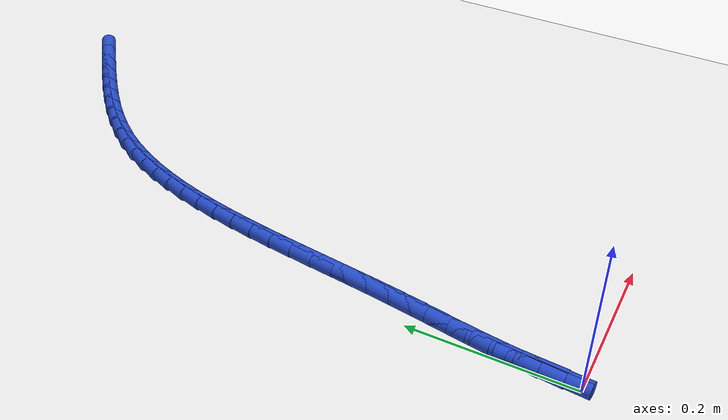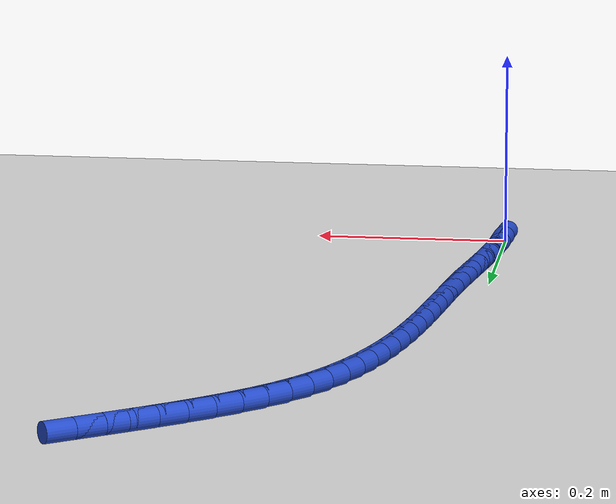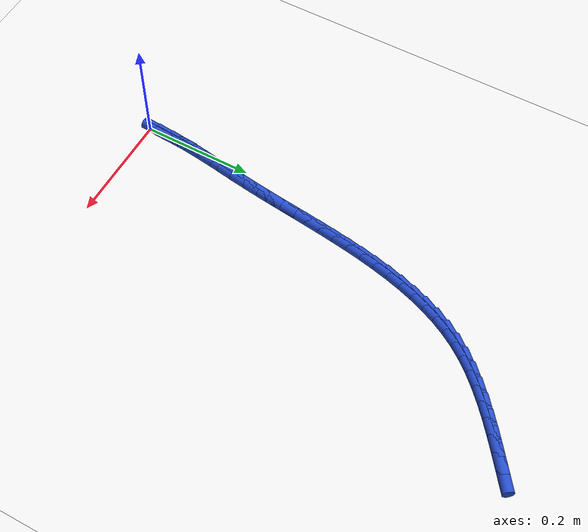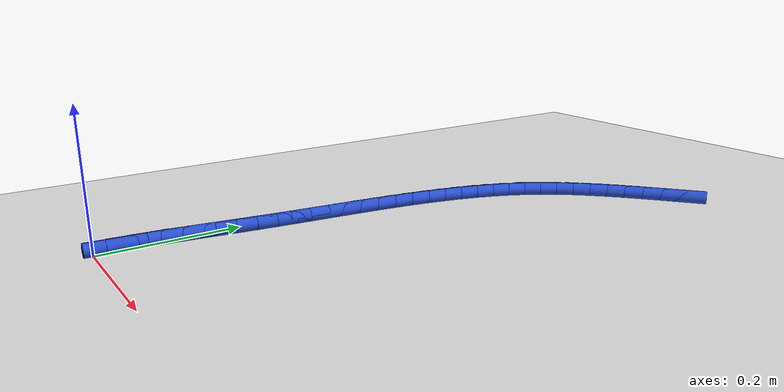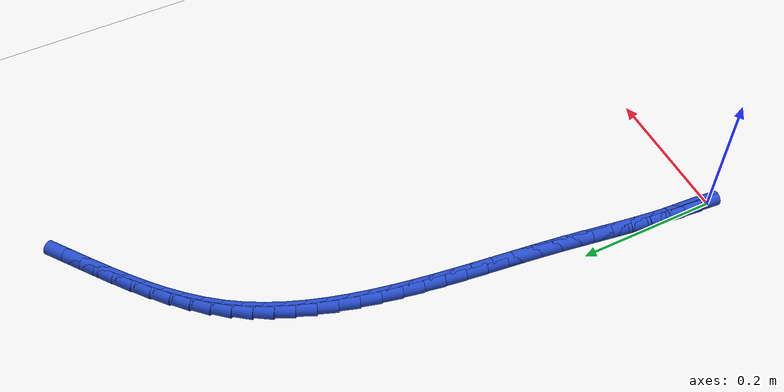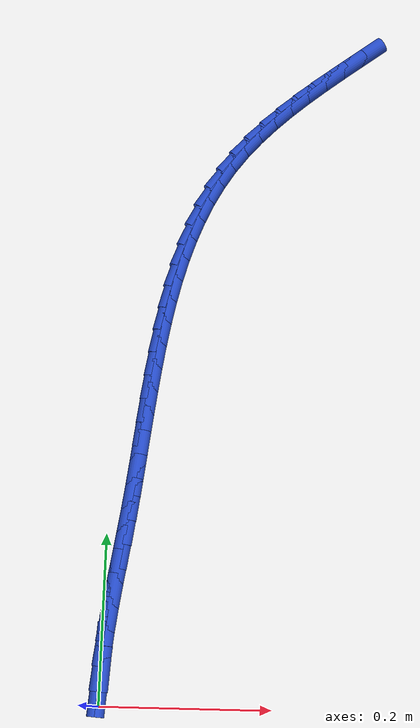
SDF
<sdf version="1.6">
 <world name="default">
  <model name="ground_plane">
   <static>1</static>
   <link name="link">
    <collision name="collision">
     <geometry><plane><normal>0 0 1</normal><size>100 100</size></plane></geometry>
     <surface><friction><ode><mu>100</mu><mu2>50</mu2></ode></friction></surface>
    </collision>
    <visual name="visual">
     <cast_shadows>0</cast_shadows>
     <geometry><plane><normal>0 0 1</normal><size>100 100</size></plane></geometry>
     <material>
      <script><uri>file://media/materials/scripts/gazebo.material</uri><name>Gazebo/WhiteGlow</name></script>
     </material>
    </visual>
   </link>
  </model>
  <model name="line">
   <link name="link_1">
    <pose>0.0008459314227873267 0.02835528563312401 0.01 0 1.57 1.5014154609786812</pose>
    <collision name="collision">
     <geometry><cylinder><radius>0.01</radius><length>0.08</length></cylinder></geometry>
    </collision>
    <visual name="visual">
     <material>
      <script><name>Gazebo/Blue</name><uri>file://media/materials/scripts/gazebo.material</uri></script>
     </material>
     <geometry><cylinder><radius>0.01</radius><length>0.08</length></cylinder></geometry>
    </visual>
   </link>
   <link name="link_2">
    <pose>0.0028027597509173562 0.05651416535578049 0.01 0 1.57 1.4691418552698836</pose>
    <collision name="collision">
     <geometry><cylinder><radius>0.01</radius><length>0.08</length></cylinder></geometry>
    </collision>
    <visual name="visual">
     <material>
      <script><name>Gazebo/Blue</name><uri>file://media/materials/scripts/gazebo.material</uri></script>
     </material>
     <geometry><cylinder><radius>0.01</radius><length>0.08</length></cylinder></geometry>
    </visual>
   </link>
   <link name="link_3">
    <pose>0.0056630419423527945 0.08455447668830844 0.01 0 1.57 1.4444604171441804</pose>
    <collision name="collision">
     <geometry><cylinder><radius>0.01</radius><length>0.08</length></cylinder></geometry>
    </collision>
    <visual name="visual">
     <material>
      <script><name>Gazebo/Blue</name><uri>file://media/materials/scripts/gazebo.material</uri></script>
     </material>
     <geometry><cylinder><radius>0.01</radius><length>0.08</length></cylinder></geometry>
    </visual>
   </link>
   <link name="link_4">
    <pose>0.009219334955056339 0.11255405715104687 0.01 0 1.57 1.4275146693953007</pose>
    <collision name="collision">
     <geometry><cylinder><radius>0.01</radius><length>0.08</length></cylinder></geometry>
    </collision>
    <visual name="visual">
     <material>
      <script><name>Gazebo/Blue</name><uri>file://media/materials/scripts/gazebo.material</uri></script>
     </material>
     <geometry><cylinder><radius>0.01</radius><length>0.08</length></cylinder></geometry>
    </visual>
   </link>
   <link name="link_5">
    <pose>0.01326419574699068 0.14059074426433482 0.01 0 1.57 1.4183217091300717</pose>
    <collision name="collision">
     <geometry><cylinder><radius>0.01</radius><length>0.08</length></cylinder></geometry>
    </collision>
    <visual name="visual">
     <material>
      <script><name>Gazebo/Blue</name><uri>file://media/materials/scripts/gazebo.material</uri></script>
     </material>
     <geometry><cylinder><radius>0.01</radius><length>0.08</length></cylinder></geometry>
    </visual>
   </link>
   <link name="link_6">
    <pose>0.01759018127611853 0.16874237554851132 0.01 0 1.57 1.4168035609285206</pose>
    <collision name="collision">
     <geometry><cylinder><radius>0.01</radius><length>0.08</length></cylinder></geometry>
    </collision>
    <visual name="visual">
     <material>
      <script><name>Gazebo/Blue</name><uri>file://media/materials/scripts/gazebo.material</uri></script>
     </material>
     <geometry><cylinder><radius>0.01</radius><length>0.08</length></cylinder></geometry>
    </visual>
   </link>
   <link name="link_7">
    <pose>0.021989848500402573 0.19708678852391542 0.01 0 1.57 1.422807046329848</pose>
    <collision name="collision">
     <geometry><cylinder><radius>0.01</radius><length>0.08</length></cylinder></geometry>
    </collision>
    <visual name="visual">
     <material>
      <script><name>Gazebo/Blue</name><uri>file://media/materials/scripts/gazebo.material</uri></script>
     </material>
     <geometry><cylinder><radius>0.01</radius><length>0.08</length></cylinder></geometry>
    </visual>
   </link>
   <link name="link_8">
    <pose>0.02625575437780551 0.22570182071088613 0.01 0 1.57 1.4349243816880823</pose>
    <collision name="collision">
     <geometry><cylinder><radius>0.01</radius><length>0.08</length></cylinder></geometry>
    </collision>
    <visual name="visual">
     <material>
      <script><name>Gazebo/Blue</name><uri>file://media/materials/scripts/gazebo.material</uri></script>
     </material>
     <geometry><cylinder><radius>0.01</radius><length>0.08</length></cylinder></geometry>
    </visual>
   </link>
   <link name="link_9">
    <pose>0.030213189890216003 0.2546485801065612 0.01 0 1.57 1.4450535467283119</pose>
    <collision name="collision">
     <geometry><cylinder><radius>0.01</radius><length>0.08</length></cylinder></geometry>
    </collision>
    <visual name="visual">
     <material>
      <script><name>Gazebo/Blue</name><uri>file://media/materials/scripts/gazebo.material</uri></script>
     </material>
     <geometry><cylinder><radius>0.01</radius><length>0.08</length></cylinder></geometry>
    </visual>
   </link>
   <link name="link_10">
    <pose>0.0339077659649885 0.28387557481361697 0.01 0 1.57 1.4500570326473867</pose>
    <collision name="collision">
     <geometry><cylinder><radius>0.01</radius><length>0.08</length></cylinder></geometry>
    </collision>
    <visual name="visual">
     <material>
      <script><name>Gazebo/Blue</name><uri>file://media/materials/scripts/gazebo.material</uri></script>
     </material>
     <geometry><cylinder><radius>0.01</radius><length>0.08</length></cylinder></geometry>
    </visual>
   </link>
   <link name="link_11">
    <pose>0.03747597874428108 0.31328486382376375 0.01 0 1.57 1.4500503241573974</pose>
    <collision name="collision">
     <geometry><cylinder><radius>0.01</radius><length>0.08</length></cylinder></geometry>
    </collision>
    <visual name="visual">
     <material>
      <script><name>Gazebo/Blue</name><uri>file://media/materials/scripts/gazebo.material</uri></script>
     </material>
     <geometry><cylinder><radius>0.01</radius><length>0.08</length></cylinder></geometry>
    </visual>
   </link>
   <link name="link_12">
    <pose>0.04105460917173479 0.34277836057395095 0.01 0 1.57 1.4450762870016227</pose>
    <collision name="collision">
     <geometry><cylinder><radius>0.01</radius><length>0.08</length></cylinder></geometry>
    </collision>
    <visual name="visual">
     <material>
      <script><name>Gazebo/Blue</name><uri>file://media/materials/scripts/gazebo.material</uri></script>
     </material>
     <geometry><cylinder><radius>0.01</radius><length>0.08</length></cylinder></geometry>
    </visual>
   </link>
   <link name="link_13">
    <pose>0.044780438190990667 0.3722579785011281 0.01 0 1.57 1.4350971684538663</pose>
    <collision name="collision">
     <geometry><cylinder><radius>0.01</radius><length>0.08</length></cylinder></geometry>
    </collision>
    <visual name="visual">
     <material>
      <script><name>Gazebo/Blue</name><uri>file://media/materials/scripts/gazebo.material</uri></script>
     </material>
     <geometry><cylinder><radius>0.01</radius><length>0.08</length></cylinder></geometry>
    </visual>
   </link>
   <link name="link_14">
    <pose>0.048790246745689735 0.40162563104224486 0.01 0 1.57 1.419997435423446</pose>
    <collision name="collision">
     <geometry><cylinder><radius>0.01</radius><length>0.08</length></cylinder></geometry>
    </collision>
    <visual name="visual">
     <material>
      <script><name>Gazebo/Blue</name><uri>file://media/materials/scripts/gazebo.material</uri></script>
     </material>
     <geometry><cylinder><radius>0.01</radius><length>0.08</length></cylinder></geometry>
    </visual>
   </link>
   <link name="link_15">
    <pose>0.05322081577947305 0.43078323163425064 0.01 0 1.57 1.399587688361434</pose>
    <collision name="collision">
     <geometry><cylinder><radius>0.01</radius><length>0.08</length></cylinder></geometry>
    </collision>
    <visual name="visual">
     <material>
      <script><name>Gazebo/Blue</name><uri>file://media/materials/scripts/gazebo.material</uri></script>
     </material>
     <geometry><cylinder><radius>0.01</radius><length>0.08</length></cylinder></geometry>
    </visual>
   </link>
   <link name="link_16">
    <pose>0.05820892623598163 0.4596326937140951 0.01 0 1.57 1.3736108628218646</pose>
    <collision name="collision">
     <geometry><cylinder><radius>0.01</radius><length>0.08</length></cylinder></geometry>
    </collision>
    <visual name="visual">
     <material>
      <script><name>Gazebo/Blue</name><uri>file://media/materials/scripts/gazebo.material</uri></script>
     </material>
     <geometry><cylinder><radius>0.01</radius><length>0.08</length></cylinder></geometry>
    </visual>
   </link>
   <link name="link_17">
    <pose>0.06389135905885654 0.4880759307187279 0.01 0 1.57 1.3417526721261681</pose>
    <collision name="collision">
     <geometry><cylinder><radius>0.01</radius><length>0.08</length></cylinder></geometry>
    </collision>
    <visual name="visual">
     <material>
      <script><name>Gazebo/Blue</name><uri>file://media/materials/scripts/gazebo.material</uri></script>
     </material>
     <geometry><cylinder><radius>0.01</radius><length>0.08</length></cylinder></geometry>
    </visual>
   </link>
   <link name="link_18">
    <pose>0.07040489519173876 0.5160148560850982 0.01 0 1.57 1.3036590968623252</pose>
    <collision name="collision">
     <geometry><cylinder><radius>0.01</radius><length>0.08</length></cylinder></geometry>
    </collision>
    <visual name="visual">
     <material>
      <script><name>Gazebo/Blue</name><uri>file://media/materials/scripts/gazebo.material</uri></script>
     </material>
     <geometry><cylinder><radius>0.01</radius><length>0.08</length></cylinder></geometry>
    </visual>
   </link>
   <link name="link_19">
    <pose>0.0778863155782694 0.543351383250156 0.01 0 1.57 1.2589645776523617</pose>
    <collision name="collision">
     <geometry><cylinder><radius>0.01</radius><length>0.08</length></cylinder></geometry>
    </collision>
    <visual name="visual">
     <material>
      <script><name>Gazebo/Blue</name><uri>file://media/materials/scripts/gazebo.material</uri></script>
     </material>
     <geometry><cylinder><radius>0.01</radius><length>0.08</length></cylinder></geometry>
    </visual>
   </link>
   <link name="link_20">
    <pose>0.08647240116208943 0.5699874256508505 0.01 0 1.57 1.2073350757554027</pose>
    <collision name="collision">
     <geometry><cylinder><radius>0.01</radius><length>0.08</length></cylinder></geometry>
    </collision>
    <visual name="visual">
     <material>
      <script><name>Gazebo/Blue</name><uri>file://media/materials/scripts/gazebo.material</uri></script>
     </material>
     <geometry><cylinder><radius>0.01</radius><length>0.08</length></cylinder></geometry>
    </visual>
   </link>
   <link name="link_21">
    <pose>0.09629993288683994 0.5958248967241314 0.01 0 1.57 1.1485296295350298</pose>
    <collision name="collision">
     <geometry><cylinder><radius>0.01</radius><length>0.08</length></cylinder></geometry>
    </collision>
    <visual name="visual">
     <material>
      <script><name>Gazebo/Blue</name><uri>file://media/materials/scripts/gazebo.material</uri></script>
     </material>
     <geometry><cylinder><radius>0.01</radius><length>0.08</length></cylinder></geometry>
    </visual>
   </link>
   <link name="link_22">
    <pose>0.10750569169616196 0.6207657099069485 0.01 0 1.57 1.0824813366347996</pose>
    <collision name="collision">
     <geometry><cylinder><radius>0.01</radius><length>0.08</length></cylinder></geometry>
    </collision>
    <visual name="visual">
     <material>
      <script><name>Gazebo/Blue</name><uri>file://media/materials/scripts/gazebo.material</uri></script>
     </material>
     <geometry><cylinder><radius>0.01</radius><length>0.08</length></cylinder></geometry>
    </visual>
   </link>
   <link name="link_23">
    <pose>0.12022645853369647 0.6447117786362508 0.01 0 1.57 1.0093925835638657</pose>
    <collision name="collision">
     <geometry><cylinder><radius>0.01</radius><length>0.08</length></cylinder></geometry>
    </collision>
    <visual name="visual">
     <material>
      <script><name>Gazebo/Blue</name><uri>file://media/materials/scripts/gazebo.material</uri></script>
     </material>
     <geometry><cylinder><radius>0.01</radius><length>0.08</length></cylinder></geometry>
    </visual>
   </link>
   <link name="link_24">
    <pose>0.13459901434308458 0.6675650163489882 0.01 0 1.57 0.9320099316146373</pose>
    <collision name="collision">
     <geometry><cylinder><radius>0.01</radius><length>0.08</length></cylinder></geometry>
    </collision>
    <visual name="visual">
     <material>
      <script><name>Gazebo/Blue</name><uri>file://media/materials/scripts/gazebo.material</uri></script>
     </material>
     <geometry><cylinder><radius>0.01</radius><length>0.08</length></cylinder></geometry>
    </visual>
   </link>
   <link name="link_25">
    <pose>0.1507126961604763 0.6892622936724273 0.01 0 1.57 0.8615453477317301</pose>
    <collision name="collision">
     <geometry><cylinder><radius>0.01</radius><length>0.08</length></cylinder></geometry>
    </collision>
    <visual name="visual">
     <material>
      <script><name>Gazebo/Blue</name><uri>file://media/materials/scripts/gazebo.material</uri></script>
     </material>
     <geometry><cylinder><radius>0.01</radius><length>0.08</length></cylinder></geometry>
    </visual>
   </link>
   <link name="link_26">
    <pose>0.16843065863937007 0.7099071348889575 0.01 0 1.57 0.8015421602711079</pose>
    <collision name="collision">
     <geometry><cylinder><radius>0.01</radius><length>0.08</length></cylinder></geometry>
    </collision>
    <visual name="visual">
     <material>
      <script><name>Gazebo/Blue</name><uri>file://media/materials/scripts/gazebo.material</uri></script>
     </material>
     <geometry><cylinder><radius>0.01</radius><length>0.08</length></cylinder></geometry>
    </visual>
   </link>
   <link name="link_27">
    <pose>0.18754872793895072 0.7296526726524946 0.01 0 1.57 0.7519712115304293</pose>
    <collision name="collision">
     <geometry><cylinder><radius>0.01</radius><length>0.08</length></cylinder></geometry>
    </collision>
    <visual name="visual">
     <material>
      <script><name>Gazebo/Blue</name><uri>file://media/materials/scripts/gazebo.material</uri></script>
     </material>
     <geometry><cylinder><radius>0.01</radius><length>0.08</length></cylinder></geometry>
    </visual>
   </link>
   <link name="link_28">
    <pose>0.20786271890854083 0.7486520479501848 0.01 0 1.57 0.7125176106189945</pose>
    <collision name="collision">
     <geometry><cylinder><radius>0.01</radius><length>0.08</length></cylinder></geometry>
    </collision>
    <visual name="visual">
     <material>
      <script><name>Gazebo/Blue</name><uri>file://media/materials/scripts/gazebo.material</uri></script>
     </material>
     <geometry><cylinder><radius>0.01</radius><length>0.08</length></cylinder></geometry>
    </visual>
   </link>
   <link name="link_29">
    <pose>0.22916844639746245 0.7670584017691744 0.01 0 1.57 0.682744023144074</pose>
    <collision name="collision">
     <geometry><cylinder><radius>0.01</radius><length>0.08</length></cylinder></geometry>
    </collision>
    <visual name="visual">
     <material>
      <script><name>Gazebo/Blue</name><uri>file://media/materials/scripts/gazebo.material</uri></script>
     </material>
     <geometry><cylinder><radius>0.01</radius><length>0.08</length></cylinder></geometry>
    </visual>
   </link>
   <link name="link_30">
    <pose>0.25126172525503826 0.7850248750966101 0.01 0 1.57 0.6622055635386376</pose>
    <collision name="collision">
     <geometry><cylinder><radius>0.01</radius><length>0.08</length></cylinder></geometry>
    </collision>
    <visual name="visual">
     <material>
      <script><name>Gazebo/Blue</name><uri>file://media/materials/scripts/gazebo.material</uri></script>
     </material>
     <geometry><cylinder><radius>0.01</radius><length>0.08</length></cylinder></geometry>
    </visual>
   </link>
   <link name="link_31">
    <pose>0.2739383703305906 0.8027046089196382 0.01 0 1.57 0.6505219156034365</pose>
    <collision name="collision">
     <geometry><cylinder><radius>0.01</radius><length>0.08</length></cylinder></geometry>
    </collision>
    <visual name="visual">
     <material>
      <script><name>Gazebo/Blue</name><uri>file://media/materials/scripts/gazebo.material</uri></script>
     </material>
     <geometry><cylinder><radius>0.01</radius><length>0.08</length></cylinder></geometry>
    </visual>
   </link>
   <link name="link_32">
    <pose>0.2969941964734417 0.8202507442254046 0.01 0 1.57 0.6474170595563229</pose>
    <collision name="collision">
     <geometry><cylinder><radius>0.01</radius><length>0.08</length></cylinder></geometry>
    </collision>
    <visual name="visual">
     <material>
      <script><name>Gazebo/Blue</name><uri>file://media/materials/scripts/gazebo.material</uri></script>
     </material>
     <geometry><cylinder><radius>0.01</radius><length>0.08</length></cylinder></geometry>
    </visual>
   </link>
   <link name="link_271">
    <pose>0.0009084481811768592 0.028321720925134197 0.01 0 1.57 1.4852566844358983</pose>
    <collision name="collision">
     <geometry><cylinder><radius>0.01</radius><length>0.08</length></cylinder></geometry>
    </collision>
    <visual name="visual">
     <material>
      <script><name>Gazebo/Blue</name><uri>file://media/materials/scripts/gazebo.material</uri></script>
     </material>
     <geometry><cylinder><radius>0.01</radius><length>0.08</length></cylinder></geometry>
    </visual>
   </link>
   <link name="link_272">
    <pose>0.0033028938180335032 0.056245647691859926 0.01 0 1.57 1.5121410302965876</pose>
    <collision name="collision">
     <geometry><cylinder><radius>0.01</radius><length>0.08</length></cylinder></geometry>
    </collision>
    <visual name="visual">
     <material>
      <script><name>Gazebo/Blue</name><uri>file://media/materials/scripts/gazebo.material</uri></script>
     </material>
     <geometry><cylinder><radius>0.01</radius><length>0.08</length></cylinder></geometry>
    </visual>
   </link>
  </model>
 </world>
</sdf>
